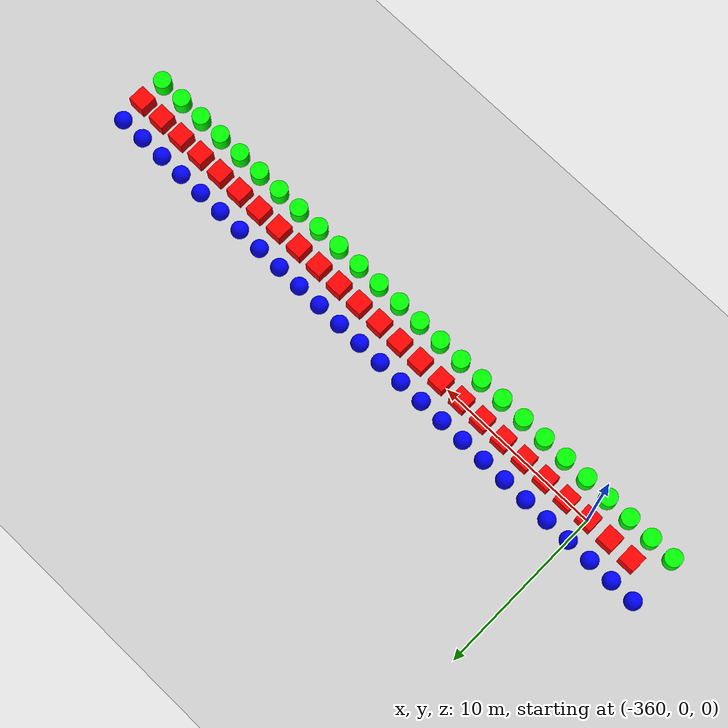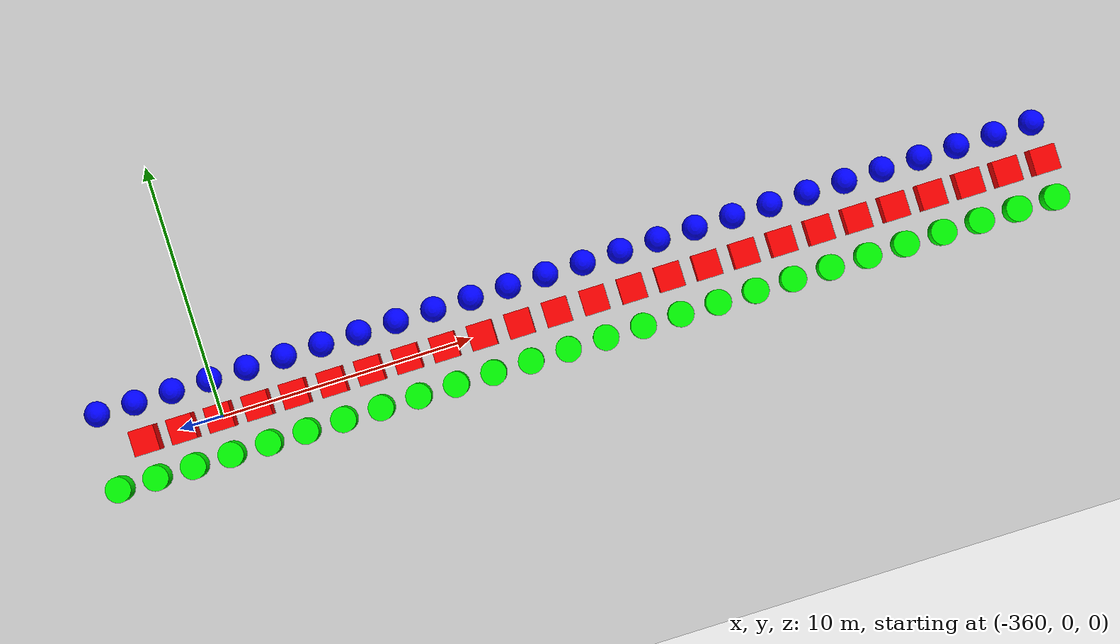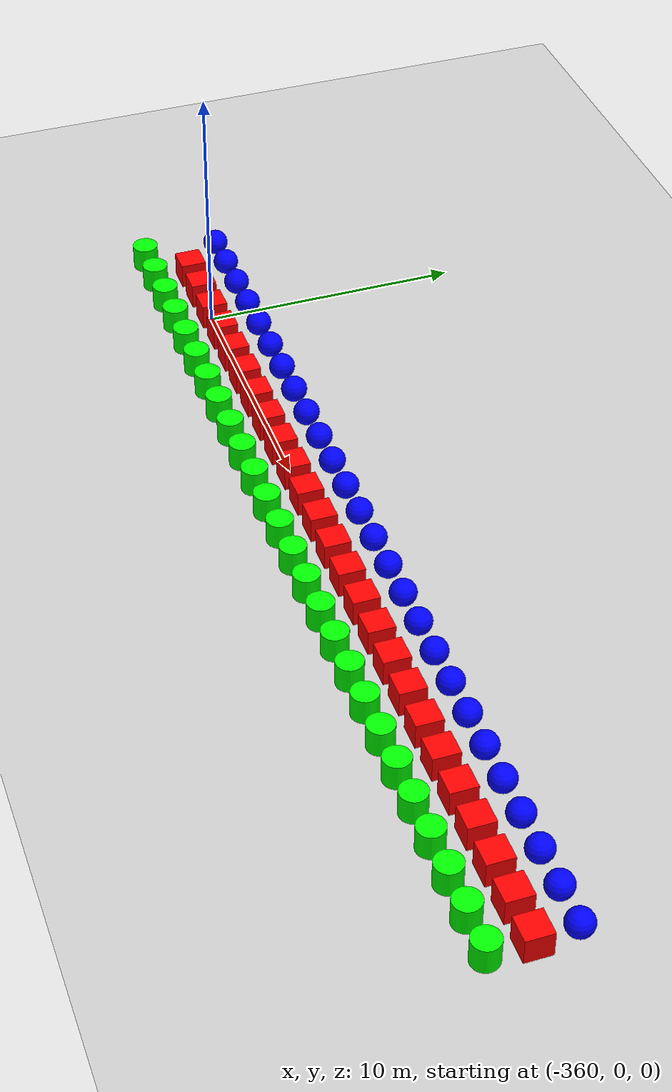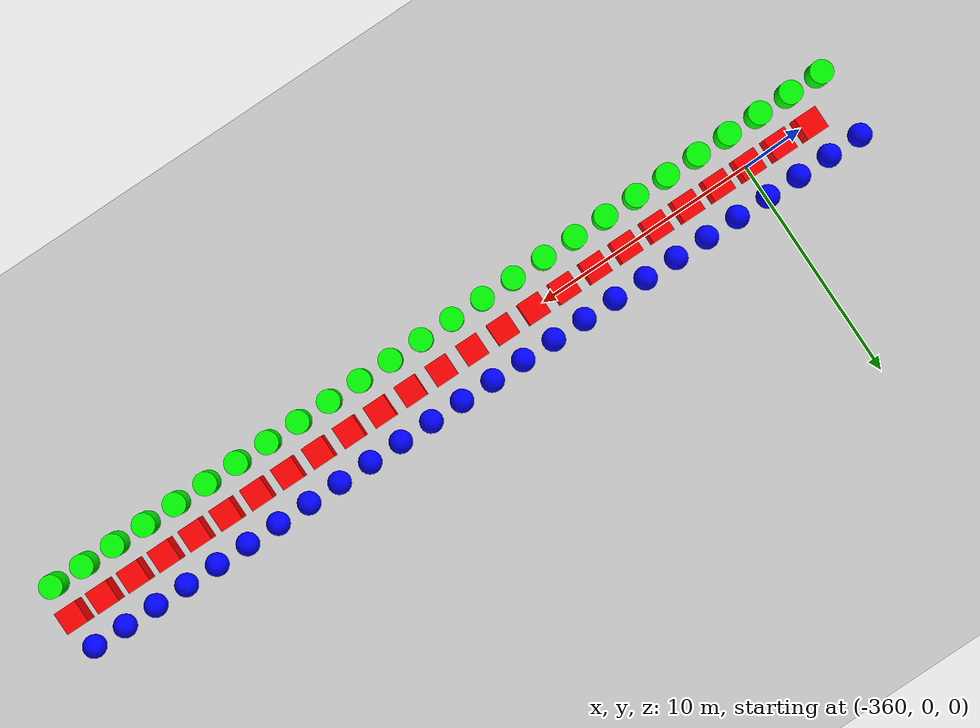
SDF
<sdf version="1.6">
 <world name="shapes">
  <model name="ground_plane">
   <static>true</static>
   <link name="link">
    <collision name="collision">
     <geometry><plane><normal>0 0 1</normal><size>100 100</size></plane></geometry>
    </collision>
    <visual name="visual">
     <geometry><plane><normal>0 0 1</normal><size>100 100</size></plane></geometry>
     <material>
      <ambient>0.8 0.8 0.8 1</ambient>
      <diffuse>0.8 0.8 0.8 1</diffuse>
      <specular>0.8 0.8 0.8 1</specular>
     </material>
    </visual>
   </link>
  </model>
  <model name="cylinder_257">
   <static>false</static>
   <pose>-364.5 -1.5 0.5 0 0 0</pose>
   <link name="cylinder_link">
    <inertial>
     <inertia><ixx>2</ixx><ixy>0</ixy><ixz>0</ixz><iyy>2</iyy><iyz>0</iyz><izz>2</izz></inertia>
     <mass>2.0</mass>
    </inertial>
    <collision name="cylinder_collision">
     <geometry><cylinder><radius>0.5</radius><length>1.0</length></cylinder></geometry>
    </collision>
    <visual name="cylinder_visual">
     <geometry><cylinder><radius>0.5</radius><length>1.0</length></cylinder></geometry>
     <material><ambient>0 1 0 1</ambient><diffuse>0 1 0 1</diffuse><specular>0 1 0 1</specular></material>
    </visual>
   </link>
  </model>
  <model name="sphere_257">
   <static>false</static>
   <pose>-364.5 1.5 0.5 0 0 0</pose>
   <link name="sphere_link">
    <inertial>
     <inertia><ixx>3</ixx><ixy>0</ixy><ixz>0</ixz><iyy>3</iyy><iyz>0</iyz><izz>3</izz></inertia>
     <mass>3.0</mass>
    </inertial>
    <collision name="sphere_collision"><geometry><sphere><radius>0.5</radius></sphere></geometry></collision>
    <visual name="sphere_visual">
     <geometry><sphere><radius>0.5</radius></sphere></geometry>
     <material><ambient>0 0 1 1</ambient><diffuse>0 0 1 1</diffuse><specular>0 0 1 1</specular></material>
    </visual>
   </link>
  </model>
  <model name="box_258">
   <static>false</static>
   <pose>-363.0 0 0.5 0 0 0</pose>
   <link name="box_link">
    <inertial>
     <inertia><ixx>1</ixx><ixy>0</ixy><ixz>0</ixz><iyy>1</iyy><iyz>0</iyz><izz>1</izz></inertia>
     <mass>1.0</mass>
    </inertial>
    <collision name="box_collision"><geometry><box><size>1 1 1</size></box></geometry></collision>
    <visual name="box_visual">
     <geometry><box><size>1 1 1</size></box></geometry>
     <material><ambient>1 0 0 1</ambient><diffuse>1 0 0 1</diffuse><specular>1 0 0 1</specular></material>
    </visual>
   </link>
  </model>
  <model name="cylinder_258">
   <static>false</static>
   <pose>-363.0 -1.5 0.5 0 0 0</pose>
   <link name="cylinder_link">
    <inertial>
     <inertia><ixx>2</ixx><ixy>0</ixy><ixz>0</ixz><iyy>2</iyy><iyz>0</iyz><izz>2</izz></inertia>
     <mass>2.0</mass>
    </inertial>
    <collision name="cylinder_collision">
     <geometry><cylinder><radius>0.5</radius><length>1.0</length></cylinder></geometry>
    </collision>
    <visual name="cylinder_visual">
     <geometry><cylinder><radius>0.5</radius><length>1.0</length></cylinder></geometry>
     <material><ambient>0 1 0 1</ambient><diffuse>0 1 0 1</diffuse><specular>0 1 0 1</specular></material>
    </visual>
   </link>
  </model>
  <model name="sphere_258">
   <static>false</static>
   <pose>-363.0 1.5 0.5 0 0 0</pose>
   <link name="sphere_link">
    <inertial>
     <inertia><ixx>3</ixx><ixy>0</ixy><ixz>0</ixz><iyy>3</iyy><iyz>0</iyz><izz>3</izz></inertia>
     <mass>3.0</mass>
    </inertial>
    <collision name="sphere_collision"><geometry><sphere><radius>0.5</radius></sphere></geometry></collision>
    <visual name="sphere_visual">
     <geometry><sphere><radius>0.5</radius></sphere></geometry>
     <material><ambient>0 0 1 1</ambient><diffuse>0 0 1 1</diffuse><specular>0 0 1 1</specular></material>
    </visual>
   </link>
  </model>
  <model name="box_259">
   <static>false</static>
   <pose>-361.5 0 0.5 0 0 0</pose>
   <link name="box_link">
    <inertial>
     <inertia><ixx>1</ixx><ixy>0</ixy><ixz>0</ixz><iyy>1</iyy><iyz>0</iyz><izz>1</izz></inertia>
     <mass>1.0</mass>
    </inertial>
    <collision name="box_collision"><geometry><box><size>1 1 1</size></box></geometry></collision>
    <visual name="box_visual">
     <geometry><box><size>1 1 1</size></box></geometry>
     <material><ambient>1 0 0 1</ambient><diffuse>1 0 0 1</diffuse><specular>1 0 0 1</specular></material>
    </visual>
   </link>
  </model>
  <model name="cylinder_259">
   <static>false</static>
   <pose>-361.5 -1.5 0.5 0 0 0</pose>
   <link name="cylinder_link">
    <inertial>
     <inertia><ixx>2</ixx><ixy>0</ixy><ixz>0</ixz><iyy>2</iyy><iyz>0</iyz><izz>2</izz></inertia>
     <mass>2.0</mass>
    </inertial>
    <collision name="cylinder_collision">
     <geometry><cylinder><radius>0.5</radius><length>1.0</length></cylinder></geometry>
    </collision>
    <visual name="cylinder_visual">
     <geometry><cylinder><radius>0.5</radius><length>1.0</length></cylinder></geometry>
     <material><ambient>0 1 0 1</ambient><diffuse>0 1 0 1</diffuse><specular>0 1 0 1</specular></material>
    </visual>
   </link>
  </model>
  <model name="sphere_259">
   <static>false</static>
   <pose>-361.5 1.5 0.5 0 0 0</pose>
   <link name="sphere_link">
    <inertial>
     <inertia><ixx>3</ixx><ixy>0</ixy><ixz>0</ixz><iyy>3</iyy><iyz>0</iyz><izz>3</izz></inertia>
     <mass>3.0</mass>
    </inertial>
    <collision name="sphere_collision"><geometry><sphere><radius>0.5</radius></sphere></geometry></collision>
    <visual name="sphere_visual">
     <geometry><sphere><radius>0.5</radius></sphere></geometry>
     <material><ambient>0 0 1 1</ambient><diffuse>0 0 1 1</diffuse><specular>0 0 1 1</specular></material>
    </visual>
   </link>
  </model>
  <model name="box_260">
   <static>false</static>
   <pose>-360.0 0 0.5 0 0 0</pose>
   <link name="box_link">
    <inertial>
     <inertia><ixx>1</ixx><ixy>0</ixy><ixz>0</ixz><iyy>1</iyy><iyz>0</iyz><izz>1</izz></inertia>
     <mass>1.0</mass>
    </inertial>
    <collision name="box_collision"><geometry><box><size>1 1 1</size></box></geometry></collision>
    <visual name="box_visual">
     <geometry><box><size>1 1 1</size></box></geometry>
     <material><ambient>1 0 0 1</ambient><diffuse>1 0 0 1</diffuse><specular>1 0 0 1</specular></material>
    </visual>
   </link>
  </model>
  <model name="cylinder_260">
   <static>false</static>
   <pose>-360.0 -1.5 0.5 0 0 0</pose>
   <link name="cylinder_link">
    <inertial>
     <inertia><ixx>2</ixx><ixy>0</ixy><ixz>0</ixz><iyy>2</iyy><iyz>0</iyz><izz>2</izz></inertia>
     <mass>2.0</mass>
    </inertial>
    <collision name="cylinder_collision">
     <geometry><cylinder><radius>0.5</radius><length>1.0</length></cylinder></geometry>
    </collision>
    <visual name="cylinder_visual">
     <geometry><cylinder><radius>0.5</radius><length>1.0</length></cylinder></geometry>
     <material><ambient>0 1 0 1</ambient><diffuse>0 1 0 1</diffuse><specular>0 1 0 1</specular></material>
    </visual>
   </link>
  </model>
  <model name="sphere_260">
   <static>false</static>
   <pose>-360.0 1.5 0.5 0 0 0</pose>
   <link name="sphere_link">
    <inertial>
     <inertia><ixx>3</ixx><ixy>0</ixy><ixz>0</ixz><iyy>3</iyy><iyz>0</iyz><izz>3</izz></inertia>
     <mass>3.0</mass>
    </inertial>
    <collision name="sphere_collision"><geometry><sphere><radius>0.5</radius></sphere></geometry></collision>
    <visual name="sphere_visual">
     <geometry><sphere><radius>0.5</radius></sphere></geometry>
     <material><ambient>0 0 1 1</ambient><diffuse>0 0 1 1</diffuse><specular>0 0 1 1</specular></material>
    </visual>
   </link>
  </model>
  <model name="box_261">
   <static>false</static>
   <pose>-358.5 0 0.5 0 0 0</pose>
   <link name="box_link">
    <inertial>
     <inertia><ixx>1</ixx><ixy>0</ixy><ixz>0</ixz><iyy>1</iyy><iyz>0</iyz><izz>1</izz></inertia>
     <mass>1.0</mass>
    </inertial>
    <collision name="box_collision"><geometry><box><size>1 1 1</size></box></geometry></collision>
    <visual name="box_visual">
     <geometry><box><size>1 1 1</size></box></geometry>
     <material><ambient>1 0 0 1</ambient><diffuse>1 0 0 1</diffuse><specular>1 0 0 1</specular></material>
    </visual>
   </link>
  </model>
  <model name="cylinder_261">
   <static>false</static>
   <pose>-358.5 -1.5 0.5 0 0 0</pose>
   <link name="cylinder_link">
    <inertial>
     <inertia><ixx>2</ixx><ixy>0</ixy><ixz>0</ixz><iyy>2</iyy><iyz>0</iyz><izz>2</izz></inertia>
     <mass>2.0</mass>
    </inertial>
    <collision name="cylinder_collision">
     <geometry><cylinder><radius>0.5</radius><length>1.0</length></cylinder></geometry>
    </collision>
    <visual name="cylinder_visual">
     <geometry><cylinder><radius>0.5</radius><length>1.0</length></cylinder></geometry>
     <material><ambient>0 1 0 1</ambient><diffuse>0 1 0 1</diffuse><specular>0 1 0 1</specular></material>
    </visual>
   </link>
  </model>
  <model name="sphere_261">
   <static>false</static>
   <pose>-358.5 1.5 0.5 0 0 0</pose>
   <link name="sphere_link">
    <inertial>
     <inertia><ixx>3</ixx><ixy>0</ixy><ixz>0</ixz><iyy>3</iyy><iyz>0</iyz><izz>3</izz></inertia>
     <mass>3.0</mass>
    </inertial>
    <collision name="sphere_collision"><geometry><sphere><radius>0.5</radius></sphere></geometry></collision>
    <visual name="sphere_visual">
     <geometry><sphere><radius>0.5</radius></sphere></geometry>
     <material><ambient>0 0 1 1</ambient><diffuse>0 0 1 1</diffuse><specular>0 0 1 1</specular></material>
    </visual>
   </link>
  </model>
  <model name="box_262">
   <static>false</static>
   <pose>-357.0 0 0.5 0 0 0</pose>
   <link name="box_link">
    <inertial>
     <inertia><ixx>1</ixx><ixy>0</ixy><ixz>0</ixz><iyy>1</iyy><iyz>0</iyz><izz>1</izz></inertia>
     <mass>1.0</mass>
    </inertial>
    <collision name="box_collision"><geometry><box><size>1 1 1</size></box></geometry></collision>
    <visual name="box_visual">
     <geometry><box><size>1 1 1</size></box></geometry>
     <material><ambient>1 0 0 1</ambient><diffuse>1 0 0 1</diffuse><specular>1 0 0 1</specular></material>
    </visual>
   </link>
  </model>
  <model name="cylinder_262">
   <static>false</static>
   <pose>-357.0 -1.5 0.5 0 0 0</pose>
   <link name="cylinder_link">
    <inertial>
     <inertia><ixx>2</ixx><ixy>0</ixy><ixz>0</ixz><iyy>2</iyy><iyz>0</iyz><izz>2</izz></inertia>
     <mass>2.0</mass>
    </inertial>
    <collision name="cylinder_collision">
     <geometry><cylinder><radius>0.5</radius><length>1.0</length></cylinder></geometry>
    </collision>
    <visual name="cylinder_visual">
     <geometry><cylinder><radius>0.5</radius><length>1.0</length></cylinder></geometry>
     <material><ambient>0 1 0 1</ambient><diffuse>0 1 0 1</diffuse><specular>0 1 0 1</specular></material>
    </visual>
   </link>
  </model>
  <model name="sphere_262">
   <static>false</static>
   <pose>-357.0 1.5 0.5 0 0 0</pose>
   <link name="sphere_link">
    <inertial>
     <inertia><ixx>3</ixx><ixy>0</ixy><ixz>0</ixz><iyy>3</iyy><iyz>0</iyz><izz>3</izz></inertia>
     <mass>3.0</mass>
    </inertial>
    <collision name="sphere_collision"><geometry><sphere><radius>0.5</radius></sphere></geometry></collision>
    <visual name="sphere_visual">
     <geometry><sphere><radius>0.5</radius></sphere></geometry>
     <material><ambient>0 0 1 1</ambient><diffuse>0 0 1 1</diffuse><specular>0 0 1 1</specular></material>
    </visual>
   </link>
  </model>
  <model name="box_263">
   <static>false</static>
   <pose>-355.5 0 0.5 0 0 0</pose>
   <link name="box_link">
    <inertial>
     <inertia><ixx>1</ixx><ixy>0</ixy><ixz>0</ixz><iyy>1</iyy><iyz>0</iyz><izz>1</izz></inertia>
     <mass>1.0</mass>
    </inertial>
    <collision name="box_collision"><geometry><box><size>1 1 1</size></box></geometry></collision>
    <visual name="box_visual">
     <geometry><box><size>1 1 1</size></box></geometry>
     <material><ambient>1 0 0 1</ambient><diffuse>1 0 0 1</diffuse><specular>1 0 0 1</specular></material>
    </visual>
   </link>
  </model>
  <model name="cylinder_263">
   <static>false</static>
   <pose>-355.5 -1.5 0.5 0 0 0</pose>
   <link name="cylinder_link">
    <inertial>
     <inertia><ixx>2</ixx><ixy>0</ixy><ixz>0</ixz><iyy>2</iyy><iyz>0</iyz><izz>2</izz></inertia>
     <mass>2.0</mass>
    </inertial>
    <collision name="cylinder_collision">
     <geometry><cylinder><radius>0.5</radius><length>1.0</length></cylinder></geometry>
    </collision>
    <visual name="cylinder_visual">
     <geometry><cylinder><radius>0.5</radius><length>1.0</length></cylinder></geometry>
     <material><ambient>0 1 0 1</ambient><diffuse>0 1 0 1</diffuse><specular>0 1 0 1</specular></material>
    </visual>
   </link>
  </model>
  <model name="sphere_263">
   <static>false</static>
   <pose>-355.5 1.5 0.5 0 0 0</pose>
   <link name="sphere_link">
    <inertial>
     <inertia><ixx>3</ixx><ixy>0</ixy><ixz>0</ixz><iyy>3</iyy><iyz>0</iyz><izz>3</izz></inertia>
     <mass>3.0</mass>
    </inertial>
    <collision name="sphere_collision"><geometry><sphere><radius>0.5</radius></sphere></geometry></collision>
    <visual name="sphere_visual">
     <geometry><sphere><radius>0.5</radius></sphere></geometry>
     <material><ambient>0 0 1 1</ambient><diffuse>0 0 1 1</diffuse><specular>0 0 1 1</specular></material>
    </visual>
   </link>
  </model>
  <model name="box_264">
   <static>false</static>
   <pose>-354.0 0 0.5 0 0 0</pose>
   <link name="box_link">
    <inertial>
     <inertia><ixx>1</ixx><ixy>0</ixy><ixz>0</ixz><iyy>1</iyy><iyz>0</iyz><izz>1</izz></inertia>
     <mass>1.0</mass>
    </inertial>
    <collision name="box_collision"><geometry><box><size>1 1 1</size></box></geometry></collision>
    <visual name="box_visual">
     <geometry><box><size>1 1 1</size></box></geometry>
     <material><ambient>1 0 0 1</ambient><diffuse>1 0 0 1</diffuse><specular>1 0 0 1</specular></material>
    </visual>
   </link>
  </model>
  <model name="cylinder_264">
   <static>false</static>
   <pose>-354.0 -1.5 0.5 0 0 0</pose>
   <link name="cylinder_link">
    <inertial>
     <inertia><ixx>2</ixx><ixy>0</ixy><ixz>0</ixz><iyy>2</iyy><iyz>0</iyz><izz>2</izz></inertia>
     <mass>2.0</mass>
    </inertial>
    <collision name="cylinder_collision">
     <geometry><cylinder><radius>0.5</radius><length>1.0</length></cylinder></geometry>
    </collision>
    <visual name="cylinder_visual">
     <geometry><cylinder><radius>0.5</radius><length>1.0</length></cylinder></geometry>
     <material><ambient>0 1 0 1</ambient><diffuse>0 1 0 1</diffuse><specular>0 1 0 1</specular></material>
    </visual>
   </link>
  </model>
  <model name="sphere_264">
   <static>false</static>
   <pose>-354.0 1.5 0.5 0 0 0</pose>
   <link name="sphere_link">
    <inertial>
     <inertia><ixx>3</ixx><ixy>0</ixy><ixz>0</ixz><iyy>3</iyy><iyz>0</iyz><izz>3</izz></inertia>
     <mass>3.0</mass>
    </inertial>
    <collision name="sphere_collision"><geometry><sphere><radius>0.5</radius></sphere></geometry></collision>
    <visual name="sphere_visual">
     <geometry><sphere><radius>0.5</radius></sphere></geometry>
     <material><ambient>0 0 1 1</ambient><diffuse>0 0 1 1</diffuse><specular>0 0 1 1</specular></material>
    </visual>
   </link>
  </model>
  <model name="box_265">
   <static>false</static>
   <pose>-352.5 0 0.5 0 0 0</pose>
   <link name="box_link">
    <inertial>
     <inertia><ixx>1</ixx><ixy>0</ixy><ixz>0</ixz><iyy>1</iyy><iyz>0</iyz><izz>1</izz></inertia>
     <mass>1.0</mass>
    </inertial>
    <collision name="box_collision"><geometry><box><size>1 1 1</size></box></geometry></collision>
    <visual name="box_visual">
     <geometry><box><size>1 1 1</size></box></geometry>
     <material><ambient>1 0 0 1</ambient><diffuse>1 0 0 1</diffuse><specular>1 0 0 1</specular></material>
    </visual>
   </link>
  </model>
  <model name="cylinder_265">
   <static>false</static>
   <pose>-352.5 -1.5 0.5 0 0 0</pose>
   <link name="cylinder_link">
    <inertial>
     <inertia><ixx>2</ixx><ixy>0</ixy><ixz>0</ixz><iyy>2</iyy><iyz>0</iyz><izz>2</izz></inertia>
     <mass>2.0</mass>
    </inertial>
    <collision name="cylinder_collision">
     <geometry><cylinder><radius>0.5</radius><length>1.0</length></cylinder></geometry>
    </collision>
    <visual name="cylinder_visual">
     <geometry><cylinder><radius>0.5</radius><length>1.0</length></cylinder></geometry>
     <material><ambient>0 1 0 1</ambient><diffuse>0 1 0 1</diffuse><specular>0 1 0 1</specular></material>
    </visual>
   </link>
  </model>
  <model name="sphere_265">
   <static>false</static>
   <pose>-352.5 1.5 0.5 0 0 0</pose>
   <link name="sphere_link">
    <inertial>
     <inertia><ixx>3</ixx><ixy>0</ixy><ixz>0</ixz><iyy>3</iyy><iyz>0</iyz><izz>3</izz></inertia>
     <mass>3.0</mass>
    </inertial>
    <collision name="sphere_collision"><geometry><sphere><radius>0.5</radius></sphere></geometry></collision>
    <visual name="sphere_visual">
     <geometry><sphere><radius>0.5</radius></sphere></geometry>
     <material><ambient>0 0 1 1</ambient><diffuse>0 0 1 1</diffuse><specular>0 0 1 1</specular></material>
    </visual>
   </link>
  </model>
  <model name="box_266">
   <static>false</static>
   <pose>-351.0 0 0.5 0 0 0</pose>
   <link name="box_link">
    <inertial>
     <inertia><ixx>1</ixx><ixy>0</ixy><ixz>0</ixz><iyy>1</iyy><iyz>0</iyz><izz>1</izz></inertia>
     <mass>1.0</mass>
    </inertial>
    <collision name="box_collision"><geometry><box><size>1 1 1</size></box></geometry></collision>
    <visual name="box_visual">
     <geometry><box><size>1 1 1</size></box></geometry>
     <material><ambient>1 0 0 1</ambient><diffuse>1 0 0 1</diffuse><specular>1 0 0 1</specular></material>
    </visual>
   </link>
  </model>
  <model name="cylinder_266">
   <static>false</static>
   <pose>-351.0 -1.5 0.5 0 0 0</pose>
   <link name="cylinder_link">
    <inertial>
     <inertia><ixx>2</ixx><ixy>0</ixy><ixz>0</ixz><iyy>2</iyy><iyz>0</iyz><izz>2</izz></inertia>
     <mass>2.0</mass>
    </inertial>
    <collision name="cylinder_collision">
     <geometry><cylinder><radius>0.5</radius><length>1.0</length></cylinder></geometry>
    </collision>
    <visual name="cylinder_visual">
     <geometry><cylinder><radius>0.5</radius><length>1.0</length></cylinder></geometry>
     <material><ambient>0 1 0 1</ambient><diffuse>0 1 0 1</diffuse><specular>0 1 0 1</specular></material>
    </visual>
   </link>
  </model>
  <model name="sphere_266">
   <static>false</static>
   <pose>-351.0 1.5 0.5 0 0 0</pose>
   <link name="sphere_link">
    <inertial>
     <inertia><ixx>3</ixx><ixy>0</ixy><ixz>0</ixz><iyy>3</iyy><iyz>0</iyz><izz>3</izz></inertia>
     <mass>3.0</mass>
    </inertial>
    <collision name="sphere_collision"><geometry><sphere><radius>0.5</radius></sphere></geometry></collision>
    <visual name="sphere_visual">
     <geometry><sphere><radius>0.5</radius></sphere></geometry>
     <material><ambient>0 0 1 1</ambient><diffuse>0 0 1 1</diffuse><specular>0 0 1 1</specular></material>
    </visual>
   </link>
  </model>
  <model name="box_267">
   <static>false</static>
   <pose>-349.5 0 0.5 0 0 0</pose>
   <link name="box_link">
    <inertial>
     <inertia><ixx>1</ixx><ixy>0</ixy><ixz>0</ixz><iyy>1</iyy><iyz>0</iyz><izz>1</izz></inertia>
     <mass>1.0</mass>
    </inertial>
    <collision name="box_collision"><geometry><box><size>1 1 1</size></box></geometry></collision>
    <visual name="box_visual">
     <geometry><box><size>1 1 1</size></box></geometry>
     <material><ambient>1 0 0 1</ambient><diffuse>1 0 0 1</diffuse><specular>1 0 0 1</specular></material>
    </visual>
   </link>
  </model>
  <model name="cylinder_267">
   <static>false</static>
   <pose>-349.5 -1.5 0.5 0 0 0</pose>
   <link name="cylinder_link">
    <inertial>
     <inertia><ixx>2</ixx><ixy>0</ixy><ixz>0</ixz><iyy>2</iyy><iyz>0</iyz><izz>2</izz></inertia>
     <mass>2.0</mass>
    </inertial>
    <collision name="cylinder_collision">
     <geometry><cylinder><radius>0.5</radius><length>1.0</length></cylinder></geometry>
    </collision>
    <visual name="cylinder_visual">
     <geometry><cylinder><radius>0.5</radius><length>1.0</length></cylinder></geometry>
     <material><ambient>0 1 0 1</ambient><diffuse>0 1 0 1</diffuse><specular>0 1 0 1</specular></material>
    </visual>
   </link>
  </model>
  <model name="sphere_267">
   <static>false</static>
   <pose>-349.5 1.5 0.5 0 0 0</pose>
   <link name="sphere_link">
    <inertial>
     <inertia><ixx>3</ixx><ixy>0</ixy><ixz>0</ixz><iyy>3</iyy><iyz>0</iyz><izz>3</izz></inertia>
     <mass>3.0</mass>
    </inertial>
    <collision name="sphere_collision"><geometry><sphere><radius>0.5</radius></sphere></geometry></collision>
    <visual name="sphere_visual">
     <geometry><sphere><radius>0.5</radius></sphere></geometry>
     <material><ambient>0 0 1 1</ambient><diffuse>0 0 1 1</diffuse><specular>0 0 1 1</specular></material>
    </visual>
   </link>
  </model>
  <model name="box_268">
   <static>false</static>
   <pose>-348.0 0 0.5 0 0 0</pose>
   <link name="box_link">
    <inertial>
     <inertia><ixx>1</ixx><ixy>0</ixy><ixz>0</ixz><iyy>1</iyy><iyz>0</iyz><izz>1</izz></inertia>
     <mass>1.0</mass>
    </inertial>
    <collision name="box_collision"><geometry><box><size>1 1 1</size></box></geometry></collision>
    <visual name="box_visual">
     <geometry><box><size>1 1 1</size></box></geometry>
     <material><ambient>1 0 0 1</ambient><diffuse>1 0 0 1</diffuse><specular>1 0 0 1</specular></material>
    </visual>
   </link>
  </model>
  <model name="cylinder_268">
   <static>false</static>
   <pose>-348.0 -1.5 0.5 0 0 0</pose>
   <link name="cylinder_link">
    <inertial>
     <inertia><ixx>2</ixx><ixy>0</ixy><ixz>0</ixz><iyy>2</iyy><iyz>0</iyz><izz>2</izz></inertia>
     <mass>2.0</mass>
    </inertial>
    <collision name="cylinder_collision">
     <geometry><cylinder><radius>0.5</radius><length>1.0</length></cylinder></geometry>
    </collision>
    <visual name="cylinder_visual">
     <geometry><cylinder><radius>0.5</radius><length>1.0</length></cylinder></geometry>
     <material><ambient>0 1 0 1</ambient><diffuse>0 1 0 1</diffuse><specular>0 1 0 1</specular></material>
    </visual>
   </link>
  </model>
  <model name="sphere_268">
   <static>false</static>
   <pose>-348.0 1.5 0.5 0 0 0</pose>
   <link name="sphere_link">
    <inertial>
     <inertia><ixx>3</ixx><ixy>0</ixy><ixz>0</ixz><iyy>3</iyy><iyz>0</iyz><izz>3</izz></inertia>
     <mass>3.0</mass>
    </inertial>
    <collision name="sphere_collision"><geometry><sphere><radius>0.5</radius></sphere></geometry></collision>
    <visual name="sphere_visual">
     <geometry><sphere><radius>0.5</radius></sphere></geometry>
     <material><ambient>0 0 1 1</ambient><diffuse>0 0 1 1</diffuse><specular>0 0 1 1</specular></material>
    </visual>
   </link>
  </model>
  <model name="box_269">
   <static>false</static>
   <pose>-346.5 0 0.5 0 0 0</pose>
   <link name="box_link">
    <inertial>
     <inertia><ixx>1</ixx><ixy>0</ixy><ixz>0</ixz><iyy>1</iyy><iyz>0</iyz><izz>1</izz></inertia>
     <mass>1.0</mass>
    </inertial>
    <collision name="box_collision"><geometry><box><size>1 1 1</size></box></geometry></collision>
    <visual name="box_visual">
     <geometry><box><size>1 1 1</size></box></geometry>
     <material><ambient>1 0 0 1</ambient><diffuse>1 0 0 1</diffuse><specular>1 0 0 1</specular></material>
    </visual>
   </link>
  </model>
  <model name="cylinder_269">
   <static>false</static>
   <pose>-346.5 -1.5 0.5 0 0 0</pose>
   <link name="cylinder_link">
    <inertial>
     <inertia><ixx>2</ixx><ixy>0</ixy><ixz>0</ixz><iyy>2</iyy><iyz>0</iyz><izz>2</izz></inertia>
     <mass>2.0</mass>
    </inertial>
    <collision name="cylinder_collision">
     <geometry><cylinder><radius>0.5</radius><length>1.0</length></cylinder></geometry>
    </collision>
    <visual name="cylinder_visual">
     <geometry><cylinder><radius>0.5</radius><length>1.0</length></cylinder></geometry>
     <material><ambient>0 1 0 1</ambient><diffuse>0 1 0 1</diffuse><specular>0 1 0 1</specular></material>
    </visual>
   </link>
  </model>
  <model name="sphere_269">
   <static>false</static>
   <pose>-346.5 1.5 0.5 0 0 0</pose>
   <link name="sphere_link">
    <inertial>
     <inertia><ixx>3</ixx><ixy>0</ixy><ixz>0</ixz><iyy>3</iyy><iyz>0</iyz><izz>3</izz></inertia>
     <mass>3.0</mass>
    </inertial>
    <collision name="sphere_collision"><geometry><sphere><radius>0.5</radius></sphere></geometry></collision>
    <visual name="sphere_visual">
     <geometry><sphere><radius>0.5</radius></sphere></geometry>
     <material><ambient>0 0 1 1</ambient><diffuse>0 0 1 1</diffuse><specular>0 0 1 1</specular></material>
    </visual>
   </link>
  </model>
  <model name="box_270">
   <static>false</static>
   <pose>-345.0 0 0.5 0 0 0</pose>
   <link name="box_link">
    <inertial>
     <inertia><ixx>1</ixx><ixy>0</ixy><ixz>0</ixz><iyy>1</iyy><iyz>0</iyz><izz>1</izz></inertia>
     <mass>1.0</mass>
    </inertial>
    <collision name="box_collision"><geometry><box><size>1 1 1</size></box></geometry></collision>
    <visual name="box_visual">
     <geometry><box><size>1 1 1</size></box></geometry>
     <material><ambient>1 0 0 1</ambient><diffuse>1 0 0 1</diffuse><specular>1 0 0 1</specular></material>
    </visual>
   </link>
  </model>
  <model name="cylinder_270">
   <static>false</static>
   <pose>-345.0 -1.5 0.5 0 0 0</pose>
   <link name="cylinder_link">
    <inertial>
     <inertia><ixx>2</ixx><ixy>0</ixy><ixz>0</ixz><iyy>2</iyy><iyz>0</iyz><izz>2</izz></inertia>
     <mass>2.0</mass>
    </inertial>
    <collision name="cylinder_collision">
     <geometry><cylinder><radius>0.5</radius><length>1.0</length></cylinder></geometry>
    </collision>
    <visual name="cylinder_visual">
     <geometry><cylinder><radius>0.5</radius><length>1.0</length></cylinder></geometry>
     <material><ambient>0 1 0 1</ambient><diffuse>0 1 0 1</diffuse><specular>0 1 0 1</specular></material>
    </visual>
   </link>
  </model>
  <model name="sphere_270">
   <static>false</static>
   <pose>-345.0 1.5 0.5 0 0 0</pose>
   <link name="sphere_link">
    <inertial>
     <inertia><ixx>3</ixx><ixy>0</ixy><ixz>0</ixz><iyy>3</iyy><iyz>0</iyz><izz>3</izz></inertia>
     <mass>3.0</mass>
    </inertial>
    <collision name="sphere_collision"><geometry><sphere><radius>0.5</radius></sphere></geometry></collision>
    <visual name="sphere_visual">
     <geometry><sphere><radius>0.5</radius></sphere></geometry>
     <material><ambient>0 0 1 1</ambient><diffuse>0 0 1 1</diffuse><specular>0 0 1 1</specular></material>
    </visual>
   </link>
  </model>
  <model name="box_271">
   <static>false</static>
   <pose>-343.5 0 0.5 0 0 0</pose>
   <link name="box_link">
    <inertial>
     <inertia><ixx>1</ixx><ixy>0</ixy><ixz>0</ixz><iyy>1</iyy><iyz>0</iyz><izz>1</izz></inertia>
     <mass>1.0</mass>
    </inertial>
    <collision name="box_collision"><geometry><box><size>1 1 1</size></box></geometry></collision>
    <visual name="box_visual">
     <geometry><box><size>1 1 1</size></box></geometry>
     <material><ambient>1 0 0 1</ambient><diffuse>1 0 0 1</diffuse><specular>1 0 0 1</specular></material>
    </visual>
   </link>
  </model>
  <model name="cylinder_271">
   <static>false</static>
   <pose>-343.5 -1.5 0.5 0 0 0</pose>
   <link name="cylinder_link">
    <inertial>
     <inertia><ixx>2</ixx><ixy>0</ixy><ixz>0</ixz><iyy>2</iyy><iyz>0</iyz><izz>2</izz></inertia>
     <mass>2.0</mass>
    </inertial>
    <collision name="cylinder_collision">
     <geometry><cylinder><radius>0.5</radius><length>1.0</length></cylinder></geometry>
    </collision>
    <visual name="cylinder_visual">
     <geometry><cylinder><radius>0.5</radius><length>1.0</length></cylinder></geometry>
     <material><ambient>0 1 0 1</ambient><diffuse>0 1 0 1</diffuse><specular>0 1 0 1</specular></material>
    </visual>
   </link>
  </model>
  <model name="sphere_271">
   <static>false</static>
   <pose>-343.5 1.5 0.5 0 0 0</pose>
   <link name="sphere_link">
    <inertial>
     <inertia><ixx>3</ixx><ixy>0</ixy><ixz>0</ixz><iyy>3</iyy><iyz>0</iyz><izz>3</izz></inertia>
     <mass>3.0</mass>
    </inertial>
    <collision name="sphere_collision"><geometry><sphere><radius>0.5</radius></sphere></geometry></collision>
    <visual name="sphere_visual">
     <geometry><sphere><radius>0.5</radius></sphere></geometry>
     <material><ambient>0 0 1 1</ambient><diffuse>0 0 1 1</diffuse><specular>0 0 1 1</specular></material>
    </visual>
   </link>
  </model>
  <model name="box_272">
   <static>false</static>
   <pose>-342.0 0 0.5 0 0 0</pose>
   <link name="box_link">
    <inertial>
     <inertia><ixx>1</ixx><ixy>0</ixy><ixz>0</ixz><iyy>1</iyy><iyz>0</iyz><izz>1</izz></inertia>
     <mass>1.0</mass>
    </inertial>
    <collision name="box_collision"><geometry><box><size>1 1 1</size></box></geometry></collision>
    <visual name="box_visual">
     <geometry><box><size>1 1 1</size></box></geometry>
     <material><ambient>1 0 0 1</ambient><diffuse>1 0 0 1</diffuse><specular>1 0 0 1</specular></material>
    </visual>
   </link>
  </model>
  <model name="cylinder_272">
   <static>false</static>
   <pose>-342.0 -1.5 0.5 0 0 0</pose>
   <link name="cylinder_link">
    <inertial>
     <inertia><ixx>2</ixx><ixy>0</ixy><ixz>0</ixz><iyy>2</iyy><iyz>0</iyz><izz>2</izz></inertia>
     <mass>2.0</mass>
    </inertial>
    <collision name="cylinder_collision">
     <geometry><cylinder><radius>0.5</radius><length>1.0</length></cylinder></geometry>
    </collision>
    <visual name="cylinder_visual">
     <geometry><cylinder><radius>0.5</radius><length>1.0</length></cylinder></geometry>
     <material><ambient>0 1 0 1</ambient><diffuse>0 1 0 1</diffuse><specular>0 1 0 1</specular></material>
    </visual>
   </link>
  </model>
  <model name="sphere_272">
   <static>false</static>
   <pose>-342.0 1.5 0.5 0 0 0</pose>
   <link name="sphere_link">
    <inertial>
     <inertia><ixx>3</ixx><ixy>0</ixy><ixz>0</ixz><iyy>3</iyy><iyz>0</iyz><izz>3</izz></inertia>
     <mass>3.0</mass>
    </inertial>
    <collision name="sphere_collision"><geometry><sphere><radius>0.5</radius></sphere></geometry></collision>
    <visual name="sphere_visual">
     <geometry><sphere><radius>0.5</radius></sphere></geometry>
     <material><ambient>0 0 1 1</ambient><diffuse>0 0 1 1</diffuse><specular>0 0 1 1</specular></material>
    </visual>
   </link>
  </model>
  <model name="box_273">
   <static>false</static>
   <pose>-340.5 0 0.5 0 0 0</pose>
   <link name="box_link">
    <inertial>
     <inertia><ixx>1</ixx><ixy>0</ixy><ixz>0</ixz><iyy>1</iyy><iyz>0</iyz><izz>1</izz></inertia>
     <mass>1.0</mass>
    </inertial>
    <collision name="box_collision"><geometry><box><size>1 1 1</size></box></geometry></collision>
    <visual name="box_visual">
     <geometry><box><size>1 1 1</size></box></geometry>
     <material><ambient>1 0 0 1</ambient><diffuse>1 0 0 1</diffuse><specular>1 0 0 1</specular></material>
    </visual>
   </link>
  </model>
  <model name="cylinder_273">
   <static>false</static>
   <pose>-340.5 -1.5 0.5 0 0 0</pose>
   <link name="cylinder_link">
    <inertial>
     <inertia><ixx>2</ixx><ixy>0</ixy><ixz>0</ixz><iyy>2</iyy><iyz>0</iyz><izz>2</izz></inertia>
     <mass>2.0</mass>
    </inertial>
    <collision name="cylinder_collision">
     <geometry><cylinder><radius>0.5</radius><length>1.0</length></cylinder></geometry>
    </collision>
    <visual name="cylinder_visual">
     <geometry><cylinder><radius>0.5</radius><length>1.0</length></cylinder></geometry>
     <material><ambient>0 1 0 1</ambient><diffuse>0 1 0 1</diffuse><specular>0 1 0 1</specular></material>
    </visual>
   </link>
  </model>
  <model name="sphere_273">
   <static>false</static>
   <pose>-340.5 1.5 0.5 0 0 0</pose>
   <link name="sphere_link">
    <inertial>
     <inertia><ixx>3</ixx><ixy>0</ixy><ixz>0</ixz><iyy>3</iyy><iyz>0</iyz><izz>3</izz></inertia>
     <mass>3.0</mass>
    </inertial>
    <collision name="sphere_collision"><geometry><sphere><radius>0.5</radius></sphere></geometry></collision>
    <visual name="sphere_visual">
     <geometry><sphere><radius>0.5</radius></sphere></geometry>
     <material><ambient>0 0 1 1</ambient><diffuse>0 0 1 1</diffuse><specular>0 0 1 1</specular></material>
    </visual>
   </link>
  </model>
  <model name="box_274">
   <static>false</static>
   <pose>-339.0 0 0.5 0 0 0</pose>
   <link name="box_link">
    <inertial>
     <inertia><ixx>1</ixx><ixy>0</ixy><ixz>0</ixz><iyy>1</iyy><iyz>0</iyz><izz>1</izz></inertia>
     <mass>1.0</mass>
    </inertial>
    <collision name="box_collision"><geometry><box><size>1 1 1</size></box></geometry></collision>
    <visual name="box_visual">
     <geometry><box><size>1 1 1</size></box></geometry>
     <material><ambient>1 0 0 1</ambient><diffuse>1 0 0 1</diffuse><specular>1 0 0 1</specular></material>
    </visual>
   </link>
  </model>
  <model name="cylinder_274">
   <static>false</static>
   <pose>-339.0 -1.5 0.5 0 0 0</pose>
   <link name="cylinder_link">
    <inertial>
     <inertia><ixx>2</ixx><ixy>0</ixy><ixz>0</ixz><iyy>2</iyy><iyz>0</iyz><izz>2</izz></inertia>
     <mass>2.0</mass>
    </inertial>
    <collision name="cylinder_collision">
     <geometry><cylinder><radius>0.5</radius><length>1.0</length></cylinder></geometry>
    </collision>
    <visual name="cylinder_visual">
     <geometry><cylinder><radius>0.5</radius><length>1.0</length></cylinder></geometry>
     <material><ambient>0 1 0 1</ambient><diffuse>0 1 0 1</diffuse><specular>0 1 0 1</specular></material>
    </visual>
   </link>
  </model>
  <model name="sphere_274">
   <static>false</static>
   <pose>-339.0 1.5 0.5 0 0 0</pose>
   <link name="sphere_link">
    <inertial>
     <inertia><ixx>3</ixx><ixy>0</ixy><ixz>0</ixz><iyy>3</iyy><iyz>0</iyz><izz>3</izz></inertia>
     <mass>3.0</mass>
    </inertial>
    <collision name="sphere_collision"><geometry><sphere><radius>0.5</radius></sphere></geometry></collision>
    <visual name="sphere_visual">
     <geometry><sphere><radius>0.5</radius></sphere></geometry>
     <material><ambient>0 0 1 1</ambient><diffuse>0 0 1 1</diffuse><specular>0 0 1 1</specular></material>
    </visual>
   </link>
  </model>
  <model name="box_275">
   <static>false</static>
   <pose>-337.5 0 0.5 0 0 0</pose>
   <link name="box_link">
    <inertial>
     <inertia><ixx>1</ixx><ixy>0</ixy><ixz>0</ixz><iyy>1</iyy><iyz>0</iyz><izz>1</izz></inertia>
     <mass>1.0</mass>
    </inertial>
    <collision name="box_collision"><geometry><box><size>1 1 1</size></box></geometry></collision>
    <visual name="box_visual">
     <geometry><box><size>1 1 1</size></box></geometry>
     <material><ambient>1 0 0 1</ambient><diffuse>1 0 0 1</diffuse><specular>1 0 0 1</specular></material>
    </visual>
   </link>
  </model>
  <model name="cylinder_275">
   <static>false</static>
   <pose>-337.5 -1.5 0.5 0 0 0</pose>
   <link name="cylinder_link">
    <inertial>
     <inertia><ixx>2</ixx><ixy>0</ixy><ixz>0</ixz><iyy>2</iyy><iyz>0</iyz><izz>2</izz></inertia>
     <mass>2.0</mass>
    </inertial>
    <collision name="cylinder_collision">
     <geometry><cylinder><radius>0.5</radius><length>1.0</length></cylinder></geometry>
    </collision>
    <visual name="cylinder_visual">
     <geometry><cylinder><radius>0.5</radius><length>1.0</length></cylinder></geometry>
     <material><ambient>0 1 0 1</ambient><diffuse>0 1 0 1</diffuse><specular>0 1 0 1</specular></material>
    </visual>
   </link>
  </model>
  <model name="sphere_275">
   <static>false</static>
   <pose>-337.5 1.5 0.5 0 0 0</pose>
   <link name="sphere_link">
    <inertial>
     <inertia><ixx>3</ixx><ixy>0</ixy><ixz>0</ixz><iyy>3</iyy><iyz>0</iyz><izz>3</izz></inertia>
     <mass>3.0</mass>
    </inertial>
    <collision name="sphere_collision"><geometry><sphere><radius>0.5</radius></sphere></geometry></collision>
    <visual name="sphere_visual">
     <geometry><sphere><radius>0.5</radius></sphere></geometry>
     <material><ambient>0 0 1 1</ambient><diffuse>0 0 1 1</diffuse><specular>0 0 1 1</specular></material>
    </visual>
   </link>
  </model>
  <model name="box_276">
   <static>false</static>
   <pose>-336.0 0 0.5 0 0 0</pose>
   <link name="box_link">
    <inertial>
     <inertia><ixx>1</ixx><ixy>0</ixy><ixz>0</ixz><iyy>1</iyy><iyz>0</iyz><izz>1</izz></inertia>
     <mass>1.0</mass>
    </inertial>
    <collision name="box_collision"><geometry><box><size>1 1 1</size></box></geometry></collision>
    <visual name="box_visual">
     <geometry><box><size>1 1 1</size></box></geometry>
     <material><ambient>1 0 0 1</ambient><diffuse>1 0 0 1</diffuse><specular>1 0 0 1</specular></material>
    </visual>
   </link>
  </model>
  <model name="cylinder_276">
   <static>false</static>
   <pose>-336.0 -1.5 0.5 0 0 0</pose>
   <link name="cylinder_link">
    <inertial>
     <inertia><ixx>2</ixx><ixy>0</ixy><ixz>0</ixz><iyy>2</iyy><iyz>0</iyz><izz>2</izz></inertia>
     <mass>2.0</mass>
    </inertial>
    <collision name="cylinder_collision">
     <geometry><cylinder><radius>0.5</radius><length>1.0</length></cylinder></geometry>
    </collision>
    <visual name="cylinder_visual">
     <geometry><cylinder><radius>0.5</radius><length>1.0</length></cylinder></geometry>
     <material><ambient>0 1 0 1</ambient><diffuse>0 1 0 1</diffuse><specular>0 1 0 1</specular></material>
    </visual>
   </link>
  </model>
  <model name="sphere_276">
   <static>false</static>
   <pose>-336.0 1.5 0.5 0 0 0</pose>
   <link name="sphere_link">
    <inertial>
     <inertia><ixx>3</ixx><ixy>0</ixy><ixz>0</ixz><iyy>3</iyy><iyz>0</iyz><izz>3</izz></inertia>
     <mass>3.0</mass>
    </inertial>
    <collision name="sphere_collision"><geometry><sphere><radius>0.5</radius></sphere></geometry></collision>
    <visual name="sphere_visual">
     <geometry><sphere><radius>0.5</radius></sphere></geometry>
     <material><ambient>0 0 1 1</ambient><diffuse>0 0 1 1</diffuse><specular>0 0 1 1</specular></material>
    </visual>
   </link>
  </model>
  <model name="box_277">
   <static>false</static>
   <pose>-334.5 0 0.5 0 0 0</pose>
   <link name="box_link">
    <inertial>
     <inertia><ixx>1</ixx><ixy>0</ixy><ixz>0</ixz><iyy>1</iyy><iyz>0</iyz><izz>1</izz></inertia>
     <mass>1.0</mass>
    </inertial>
    <collision name="box_collision"><geometry><box><size>1 1 1</size></box></geometry></collision>
    <visual name="box_visual">
     <geometry><box><size>1 1 1</size></box></geometry>
     <material><ambient>1 0 0 1</ambient><diffuse>1 0 0 1</diffuse><specular>1 0 0 1</specular></material>
    </visual>
   </link>
  </model>
  <model name="cylinder_277">
   <static>false</static>
   <pose>-334.5 -1.5 0.5 0 0 0</pose>
   <link name="cylinder_link">
    <inertial>
     <inertia><ixx>2</ixx><ixy>0</ixy><ixz>0</ixz><iyy>2</iyy><iyz>0</iyz><izz>2</izz></inertia>
     <mass>2.0</mass>
    </inertial>
    <collision name="cylinder_collision">
     <geometry><cylinder><radius>0.5</radius><length>1.0</length></cylinder></geometry>
    </collision>
    <visual name="cylinder_visual">
     <geometry><cylinder><radius>0.5</radius><length>1.0</length></cylinder></geometry>
     <material><ambient>0 1 0 1</ambient><diffuse>0 1 0 1</diffuse><specular>0 1 0 1</specular></material>
    </visual>
   </link>
  </model>
  <model name="sphere_277">
   <static>false</static>
   <pose>-334.5 1.5 0.5 0 0 0</pose>
   <link name="sphere_link">
    <inertial>
     <inertia><ixx>3</ixx><ixy>0</ixy><ixz>0</ixz><iyy>3</iyy><iyz>0</iyz><izz>3</izz></inertia>
     <mass>3.0</mass>
    </inertial>
    <collision name="sphere_collision"><geometry><sphere><radius>0.5</radius></sphere></geometry></collision>
    <visual name="sphere_visual">
     <geometry><sphere><radius>0.5</radius></sphere></geometry>
     <material><ambient>0 0 1 1</ambient><diffuse>0 0 1 1</diffuse><specular>0 0 1 1</specular></material>
    </visual>
   </link>
  </model>
  <model name="box_278">
   <static>false</static>
   <pose>-333.0 0 0.5 0 0 0</pose>
   <link name="box_link">
    <inertial>
     <inertia><ixx>1</ixx><ixy>0</ixy><ixz>0</ixz><iyy>1</iyy><iyz>0</iyz><izz>1</izz></inertia>
     <mass>1.0</mass>
    </inertial>
    <collision name="box_collision"><geometry><box><size>1 1 1</size></box></geometry></collision>
    <visual name="box_visual">
     <geometry><box><size>1 1 1</size></box></geometry>
     <material><ambient>1 0 0 1</ambient><diffuse>1 0 0 1</diffuse><specular>1 0 0 1</specular></material>
    </visual>
   </link>
  </model>
  <model name="cylinder_278">
   <static>false</static>
   <pose>-333.0 -1.5 0.5 0 0 0</pose>
   <link name="cylinder_link">
    <inertial>
     <inertia><ixx>2</ixx><ixy>0</ixy><ixz>0</ixz><iyy>2</iyy><iyz>0</iyz><izz>2</izz></inertia>
     <mass>2.0</mass>
    </inertial>
    <collision name="cylinder_collision">
     <geometry><cylinder><radius>0.5</radius><length>1.0</length></cylinder></geometry>
    </collision>
    <visual name="cylinder_visual">
     <geometry><cylinder><radius>0.5</radius><length>1.0</length></cylinder></geometry>
     <material><ambient>0 1 0 1</ambient><diffuse>0 1 0 1</diffuse><specular>0 1 0 1</specular></material>
    </visual>
   </link>
  </model>
  <model name="sphere_278">
   <static>false</static>
   <pose>-333.0 1.5 0.5 0 0 0</pose>
   <link name="sphere_link">
    <inertial>
     <inertia><ixx>3</ixx><ixy>0</ixy><ixz>0</ixz><iyy>3</iyy><iyz>0</iyz><izz>3</izz></inertia>
     <mass>3.0</mass>
    </inertial>
    <collision name="sphere_collision"><geometry><sphere><radius>0.5</radius></sphere></geometry></collision>
    <visual name="sphere_visual">
     <geometry><sphere><radius>0.5</radius></sphere></geometry>
     <material><ambient>0 0 1 1</ambient><diffuse>0 0 1 1</diffuse><specular>0 0 1 1</specular></material>
    </visual>
   </link>
  </model>
  <model name="box_279">
   <static>false</static>
   <pose>-331.5 0 0.5 0 0 0</pose>
   <link name="box_link">
    <inertial>
     <inertia><ixx>1</ixx><ixy>0</ixy><ixz>0</ixz><iyy>1</iyy><iyz>0</iyz><izz>1</izz></inertia>
     <mass>1.0</mass>
    </inertial>
    <collision name="box_collision"><geometry><box><size>1 1 1</size></box></geometry></collision>
    <visual name="box_visual">
     <geometry><box><size>1 1 1</size></box></geometry>
     <material><ambient>1 0 0 1</ambient><diffuse>1 0 0 1</diffuse><specular>1 0 0 1</specular></material>
    </visual>
   </link>
  </model>
  <model name="cylinder_279">
   <static>false</static>
   <pose>-331.5 -1.5 0.5 0 0 0</pose>
   <link name="cylinder_link">
    <inertial>
     <inertia><ixx>2</ixx><ixy>0</ixy><ixz>0</ixz><iyy>2</iyy><iyz>0</iyz><izz>2</izz></inertia>
     <mass>2.0</mass>
    </inertial>
    <collision name="cylinder_collision">
     <geometry><cylinder><radius>0.5</radius><length>1.0</length></cylinder></geometry>
    </collision>
    <visual name="cylinder_visual">
     <geometry><cylinder><radius>0.5</radius><length>1.0</length></cylinder></geometry>
     <material><ambient>0 1 0 1</ambient><diffuse>0 1 0 1</diffuse><specular>0 1 0 1</specular></material>
    </visual>
   </link>
  </model>
  <model name="sphere_279">
   <static>false</static>
   <pose>-331.5 1.5 0.5 0 0 0</pose>
   <link name="sphere_link">
    <inertial>
     <inertia><ixx>3</ixx><ixy>0</ixy><ixz>0</ixz><iyy>3</iyy><iyz>0</iyz><izz>3</izz></inertia>
     <mass>3.0</mass>
    </inertial>
    <collision name="sphere_collision"><geometry><sphere><radius>0.5</radius></sphere></geometry></collision>
    <visual name="sphere_visual">
     <geometry><sphere><radius>0.5</radius></sphere></geometry>
     <material><ambient>0 0 1 1</ambient><diffuse>0 0 1 1</diffuse><specular>0 0 1 1</specular></material>
    </visual>
   </link>
  </model>
  <model name="box_280">
   <static>false</static>
   <pose>-330.0 0 0.5 0 0 0</pose>
   <link name="box_link">
    <inertial>
     <inertia><ixx>1</ixx><ixy>0</ixy><ixz>0</ixz><iyy>1</iyy><iyz>0</iyz><izz>1</izz></inertia>
     <mass>1.0</mass>
    </inertial>
    <collision name="box_collision"><geometry><box><size>1 1 1</size></box></geometry></collision>
    <visual name="box_visual">
     <geometry><box><size>1 1 1</size></box></geometry>
     <material><ambient>1 0 0 1</ambient><diffuse>1 0 0 1</diffuse><specular>1 0 0 1</specular></material>
    </visual>
   </link>
  </model>
  <model name="cylinder_280">
   <static>false</static>
   <pose>-330.0 -1.5 0.5 0 0 0</pose>
   <link name="cylinder_link">
    <inertial>
     <inertia><ixx>2</ixx><ixy>0</ixy><ixz>0</ixz><iyy>2</iyy><iyz>0</iyz><izz>2</izz></inertia>
     <mass>2.0</mass>
    </inertial>
    <collision name="cylinder_collision">
     <geometry><cylinder><radius>0.5</radius><length>1.0</length></cylinder></geometry>
    </collision>
    <visual name="cylinder_visual">
     <geometry><cylinder><radius>0.5</radius><length>1.0</length></cylinder></geometry>
     <material><ambient>0 1 0 1</ambient><diffuse>0 1 0 1</diffuse><specular>0 1 0 1</specular></material>
    </visual>
   </link>
  </model>
  <model name="sphere_280">
   <static>false</static>
   <pose>-330.0 1.5 0.5 0 0 0</pose>
   <link name="sphere_link">
    <inertial>
     <inertia><ixx>3</ixx><ixy>0</ixy><ixz>0</ixz><iyy>3</iyy><iyz>0</iyz><izz>3</izz></inertia>
     <mass>3.0</mass>
    </inertial>
    <collision name="sphere_collision"><geometry><sphere><radius>0.5</radius></sphere></geometry></collision>
    <visual name="sphere_visual">
     <geometry><sphere><radius>0.5</radius></sphere></geometry>
     <material><ambient>0 0 1 1</ambient><diffuse>0 0 1 1</diffuse><specular>0 0 1 1</specular></material>
    </visual>
   </link>
  </model>
  <model name="box_281">
   <static>false</static>
   <pose>-328.5 0 0.5 0 0 0</pose>
   <link name="box_link">
    <inertial>
     <inertia><ixx>1</ixx><ixy>0</ixy><ixz>0</ixz><iyy>1</iyy><iyz>0</iyz><izz>1</izz></inertia>
     <mass>1.0</mass>
    </inertial>
    <collision name="box_collision"><geometry><box><size>1 1 1</size></box></geometry></collision>
    <visual name="box_visual">
     <geometry><box><size>1 1 1</size></box></geometry>
     <material><ambient>1 0 0 1</ambient><diffuse>1 0 0 1</diffuse><specular>1 0 0 1</specular></material>
    </visual>
   </link>
  </model>
  <model name="cylinder_281">
   <static>false</static>
   <pose>-328.5 -1.5 0.5 0 0 0</pose>
   <link name="cylinder_link">
    <inertial>
     <inertia><ixx>2</ixx><ixy>0</ixy><ixz>0</ixz><iyy>2</iyy><iyz>0</iyz><izz>2</izz></inertia>
     <mass>2.0</mass>
    </inertial>
    <collision name="cylinder_collision">
     <geometry><cylinder><radius>0.5</radius><length>1.0</length></cylinder></geometry>
    </collision>
    <visual name="cylinder_visual">
     <geometry><cylinder><radius>0.5</radius><length>1.0</length></cylinder></geometry>
     <material><ambient>0 1 0 1</ambient><diffuse>0 1 0 1</diffuse><specular>0 1 0 1</specular></material>
    </visual>
   </link>
  </model>
  <model name="sphere_281">
   <static>false</static>
   <pose>-328.5 1.5 0.5 0 0 0</pose>
   <link name="sphere_link">
    <inertial>
     <inertia><ixx>3</ixx><ixy>0</ixy><ixz>0</ixz><iyy>3</iyy><iyz>0</iyz><izz>3</izz></inertia>
     <mass>3.0</mass>
    </inertial>
    <collision name="sphere_collision"><geometry><sphere><radius>0.5</radius></sphere></geometry></collision>
    <visual name="sphere_visual">
     <geometry><sphere><radius>0.5</radius></sphere></geometry>
     <material><ambient>0 0 1 1</ambient><diffuse>0 0 1 1</diffuse><specular>0 0 1 1</specular></material>
    </visual>
   </link>
  </model>
  <model name="box_282">
   <static>false</static>
   <pose>-327.0 0 0.5 0 0 0</pose>
   <link name="box_link">
    <inertial>
     <inertia><ixx>1</ixx><ixy>0</ixy><ixz>0</ixz><iyy>1</iyy><iyz>0</iyz><izz>1</izz></inertia>
     <mass>1.0</mass>
    </inertial>
    <collision name="box_collision"><geometry><box><size>1 1 1</size></box></geometry></collision>
    <visual name="box_visual">
     <geometry><box><size>1 1 1</size></box></geometry>
     <material><ambient>1 0 0 1</ambient><diffuse>1 0 0 1</diffuse><specular>1 0 0 1</specular></material>
    </visual>
   </link>
  </model>
  <model name="cylinder_282">
   <static>false</static>
   <pose>-327.0 -1.5 0.5 0 0 0</pose>
   <link name="cylinder_link">
    <inertial>
     <inertia><ixx>2</ixx><ixy>0</ixy><ixz>0</ixz><iyy>2</iyy><iyz>0</iyz><izz>2</izz></inertia>
     <mass>2.0</mass>
    </inertial>
    <collision name="cylinder_collision">
     <geometry><cylinder><radius>0.5</radius><length>1.0</length></cylinder></geometry>
    </collision>
    <visual name="cylinder_visual">
     <geometry><cylinder><radius>0.5</radius><length>1.0</length></cylinder></geometry>
     <material><ambient>0 1 0 1</ambient><diffuse>0 1 0 1</diffuse><specular>0 1 0 1</specular></material>
    </visual>
   </link>
  </model>
  <model name="sphere_282">
   <static>false</static>
   <pose>-327.0 1.5 0.5 0 0 0</pose>
   <link name="sphere_link">
    <inertial>
     <inertia><ixx>3</ixx><ixy>0</ixy><ixz>0</ixz><iyy>3</iyy><iyz>0</iyz><izz>3</izz></inertia>
     <mass>3.0</mass>
    </inertial>
    <collision name="sphere_collision"><geometry><sphere><radius>0.5</radius></sphere></geometry></collision>
    <visual name="sphere_visual">
     <geometry><sphere><radius>0.5</radius></sphere></geometry>
     <material><ambient>0 0 1 1</ambient><diffuse>0 0 1 1</diffuse><specular>0 0 1 1</specular></material>
    </visual>
   </link>
  </model>
 </world>
</sdf>
